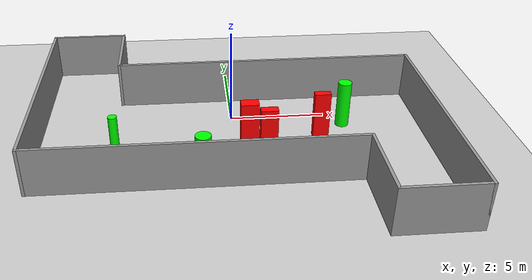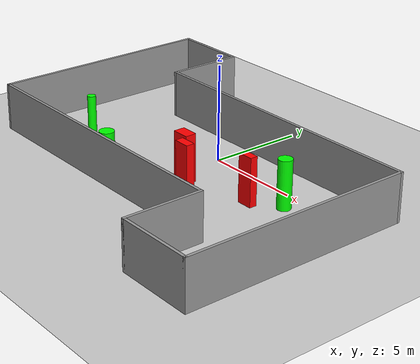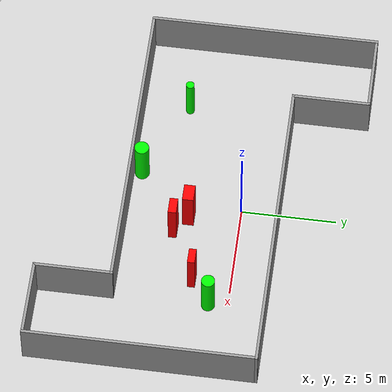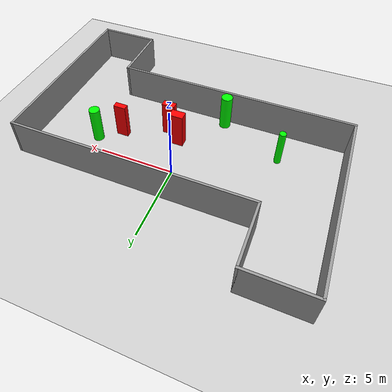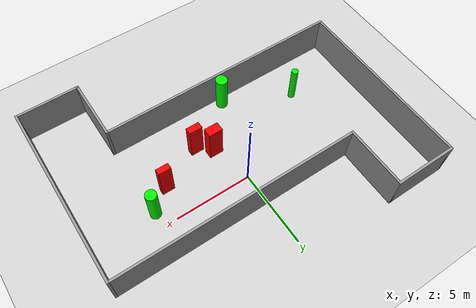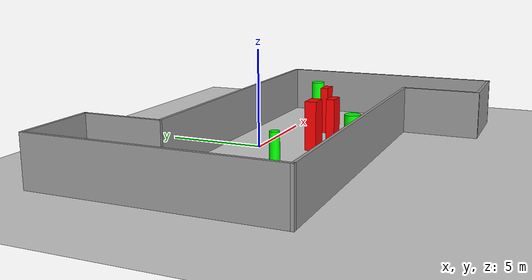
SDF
<sdf version="1.7">
 <world name="default">
  <light name="sun" type="directional">
   <pose>0 0 10 0 -0 0</pose>
   <diffuse>0.8 0.8 0.8 1</diffuse>
   <specular>0.2 0.2 0.2 1</specular>
   <attenuation>
    <range>1000</range>
    <constant>0.9</constant>
    <linear>0.01</linear>
    <quadratic>0.001</quadratic>
   </attenuation>
   <direction>-0.5 0.1 -0.9</direction>
   <spot><inner_angle>0</inner_angle><outer_angle>0</outer_angle><falloff>0</falloff></spot>
  </light>
  <model name="ground_plane">
   <static>1</static>
   <link name="link">
    <collision name="collision">
     <geometry><plane><normal>0 0 1</normal><size>100 100</size></plane></geometry>
     <surface>
      <contact><collide_bitmask>65535</collide_bitmask></contact>
      <friction><ode><mu>100</mu><mu2>50</mu2></ode></friction>
     </surface>
    </collision>
    <visual name="visual">
     <cast_shadows>0</cast_shadows>
     <geometry><plane><normal>0 0 1</normal><size>100 100</size></plane></geometry>
     <material>
      <script><uri>file://media/materials/scripts/gazebo.material</uri><name>Gazebo/Grey</name></script>
     </material>
    </visual>
   </link>
  </model>
  <gravity>0 0 -9.8</gravity>
  <magnetic_field>6e-06 2.3e-05 -4.2e-05</magnetic_field>
  <atmosphere type="adiabatic"/>
  <physics type="ode">
   <max_step_size>0.001</max_step_size>
   <real_time_factor>1</real_time_factor>
   <real_time_update_rate>1000</real_time_update_rate>
  </physics>
  <scene><ambient>0.4 0.4 0.4 1</ambient><background>0.7 0.7 0.7 1</background><shadows>1</shadows></scene>
  <spherical_coordinates>
   <surface_model>EARTH_WGS84</surface_model>
   <latitude_deg>0</latitude_deg>
   <longitude_deg>0</longitude_deg>
   <elevation>0</elevation>
   <heading_deg>0</heading_deg>
  </spherical_coordinates>
  <model name="my_base_walls">
   <link name="Wall_13">
    <collision name="Wall_13_Collision">
     <geometry><box><size>12.15 0.15 2.5</size></box></geometry>
     <pose>0 0 1.25 0 -0 0</pose>
    </collision>
    <visual name="Wall_13_Visual">
     <pose>0 0 1.25 0 -0 0</pose>
     <geometry><box><size>12.15 0.15 2.5</size></box></geometry>
     <material>
      <script><uri>file://media/materials/scripts/gazebo.material</uri><name>Gazebo/Grey</name></script>
      <ambient>1 1 1 1</ambient>
     </material>
     <meta><layer>0</layer></meta>
    </visual>
    <pose>10 -2 0 0 -0 1.5708</pose>
   </link>
   <link name="Wall_15">
    <collision name="Wall_15_Collision">
     <geometry><box><size>16.15 0.15 2.5</size></box></geometry>
     <pose>0 0 1.25 0 -0 0</pose>
    </collision>
    <visual name="Wall_15_Visual">
     <pose>0 0 1.25 0 -0 0</pose>
     <geometry><box><size>16.15 0.15 2.5</size></box></geometry>
     <material>
      <script><uri>file://media/materials/scripts/gazebo.material</uri><name>Gazebo/Grey</name></script>
      <ambient>1 1 1 1</ambient>
     </material>
     <meta><layer>0</layer></meta>
    </visual>
    <pose>2 4 0 0 -0 3.14159</pose>
   </link>
   <link name="Wall_17">
    <collision name="Wall_17_Collision">
     <geometry><box><size>4.15 0.15 2.5</size></box></geometry>
     <pose>0 0 1.25 0 -0 0</pose>
    </collision>
    <visual name="Wall_17_Visual">
     <pose>0 0 1.25 0 -0 0</pose>
     <geometry><box><size>4.15 0.15 2.5</size></box></geometry>
     <material>
      <script><uri>file://media/materials/scripts/gazebo.material</uri><name>Gazebo/Grey</name></script>
      <ambient>1 1 1 1</ambient>
     </material>
     <meta><layer>0</layer></meta>
    </visual>
    <pose>6 -6 0 0 -0 -1.5708</pose>
   </link>
   <link name="Wall_19">
    <collision name="Wall_19_Collision">
     <geometry><box><size>12.15 0.15 2.5</size></box></geometry>
     <pose>0 0 1.25 0 -0 0</pose>
    </collision>
    <visual name="Wall_19_Visual">
     <pose>0 0 1.25 0 -0 0</pose>
     <geometry><box><size>12.15 0.15 2.5</size></box></geometry>
     <material>
      <script><uri>file://media/materials/scripts/gazebo.material</uri><name>Gazebo/Grey</name></script>
      <ambient>1 1 1 1</ambient>
     </material>
     <meta><layer>0</layer></meta>
    </visual>
    <pose>-10 2 0 0 -0 1.5708</pose>
   </link>
   <link name="Wall_21">
    <collision name="Wall_21_Collision">
     <geometry><box><size>4.15 0.15 2.5</size></box></geometry>
     <pose>0 0 1.25 0 -0 0</pose>
    </collision>
    <visual name="Wall_21_Visual">
     <pose>0 0 1.25 0 -0 0</pose>
     <geometry><box><size>4.15 0.15 2.5</size></box></geometry>
     <material>
      <script><uri>file://media/materials/scripts/gazebo.material</uri><name>Gazebo/Grey</name></script>
      <ambient>1 1 1 1</ambient>
     </material>
     <meta><layer>0</layer></meta>
    </visual>
    <pose>-8 8 0 0 -0 0</pose>
   </link>
   <link name="Wall_23">
    <collision name="Wall_23_Collision">
     <geometry><box><size>4.15 0.15 2.5</size></box></geometry>
     <pose>0 0 1.25 0 -0 0</pose>
    </collision>
    <visual name="Wall_23_Visual">
     <pose>0 0 1.25 0 -0 0</pose>
     <geometry><box><size>4.15 0.15 2.5</size></box></geometry>
     <material>
      <script><uri>file://media/materials/scripts/gazebo.material</uri><name>Gazebo/Grey</name></script>
      <ambient>1 1 1 1</ambient>
     </material>
     <meta><layer>0</layer></meta>
    </visual>
    <pose>-6 6 0 0 -0 -1.5708</pose>
   </link>
   <link name="Wall_25">
    <collision name="Wall_25_Collision">
     <geometry><box><size>4.15 0.15 2.5</size></box></geometry>
     <pose>0 0 1.25 0 -0 0</pose>
    </collision>
    <visual name="Wall_25_Visual">
     <pose>0 0 1.25 0 -0 0</pose>
     <geometry><box><size>4.15 0.15 2.5</size></box></geometry>
     <material>
      <script><uri>file://media/materials/scripts/gazebo.material</uri><name>Gazebo/Grey</name></script>
      <ambient>1 1 1 1</ambient>
     </material>
     <meta><layer>0</layer></meta>
    </visual>
    <pose>8 -8 0 0 -0 0</pose>
   </link>
   <link name="Wall_9">
    <collision name="Wall_9_Collision">
     <geometry><box><size>16.15 0.15 2.5</size></box></geometry>
     <pose>0 0 1.25 0 -0 0</pose>
    </collision>
    <visual name="Wall_9_Visual">
     <pose>0 0 1.25 0 -0 0</pose>
     <geometry><box><size>16.15 0.15 2.5</size></box></geometry>
     <material>
      <script><uri>file://media/materials/scripts/gazebo.material</uri><name>Gazebo/Grey</name></script>
      <ambient>1 1 1 1</ambient>
     </material>
     <meta><layer>0</layer></meta>
    </visual>
    <pose>-2 -4 0 0 -0 3.14159</pose>
   </link>
   <static>1</static>
   <pose>-0 -2 0 0 -0 0</pose>
  </model>
  <model name="cylinder1">
   <static>1</static>
   <link name="link">
    <inertial>
     <mass>1</mass>
     <inertia><ixx>0.5</ixx><ixy>0</ixy><ixz>0</ixz><iyy>0.5</iyy><iyz>0</iyz><izz>1</izz></inertia>
    </inertial>
    <collision name="collision">
     <geometry><cylinder><radius>0.35154746976221063</radius><length>2.5</length></cylinder></geometry>
    </collision>
    <visual name="visual">
     <geometry><cylinder><radius>0.35154746976221063</radius><length>2.5</length></cylinder></geometry>
     <material>
      <ambient>0 1 0 1</ambient>
      <diffuse>0 1 0 1</diffuse>
      <specular>0.1 0.1 0.1 1</specular>
      <emissive>0 0 0 0</emissive>
     </material>
    </visual>
   </link>
   <pose>5.855699604252171 -1.0091331975154239 1.25 0 0 0</pose>
  </model>
  <model name="cylinder2">
   <static>1</static>
   <link name="link">
    <inertial>
     <mass>1</mass>
     <inertia><ixx>0.5</ixx><ixy>0</ixy><ixz>0</ixz><iyy>0.5</iyy><iyz>0</iyz><izz>1</izz></inertia>
    </inertial>
    <collision name="collision">
     <geometry><cylinder><radius>0.3804157472738034</radius><length>2.5</length></cylinder></geometry>
    </collision>
    <visual name="visual">
     <geometry><cylinder><radius>0.3804157472738034</radius><length>2.5</length></cylinder></geometry>
     <material>
      <ambient>0 1 0 1</ambient>
      <diffuse>0 1 0 1</diffuse>
      <specular>0.1 0.1 0.1 1</specular>
      <emissive>0 0 0 0</emissive>
     </material>
    </visual>
   </link>
   <pose>-1.7191646351723469 -5.506454412829583 1.25 0 0 0</pose>
  </model>
  <model name="cylinder3">
   <static>1</static>
   <link name="link">
    <inertial>
     <mass>1</mass>
     <inertia><ixx>0.5</ixx><ixy>0</ixy><ixz>0</ixz><iyy>0.5</iyy><iyz>0</iyz><izz>1</izz></inertia>
    </inertial>
    <collision name="collision">
     <geometry><cylinder><radius>0.22000779042814045</radius><length>2.5</length></cylinder></geometry>
    </collision>
    <visual name="visual">
     <geometry><cylinder><radius>0.22000779042814045</radius><length>2.5</length></cylinder></geometry>
     <material>
      <ambient>0 1 0 1</ambient>
      <diffuse>0 1 0 1</diffuse>
      <specular>0.1 0.1 0.1 1</specular>
      <emissive>0 0 0 0</emissive>
     </material>
    </visual>
   </link>
   <pose>-5.964598334602865 -3.509281555753498 1.25 0 0 0</pose>
  </model>
  <model name="box1">
   <static>1</static>
   <link name="link">
    <inertial>
     <mass>1</mass>
     <inertia><ixx>0.083</ixx><ixy>0</ixy><ixz>0</ixz><iyy>0.083</iyy><iyz>0</iyz><izz>0.083</izz></inertia>
    </inertial>
    <collision name="collision">
     <geometry><box><size>0.8206983646365122 0.3857317527532582 2.5</size></box></geometry>
    </collision>
    <visual name="visual">
     <geometry><box><size>0.8206983646365122 0.3857317527532582 2.5</size></box></geometry>
     <material>
      <ambient>1 0 0 1</ambient>
      <diffuse>1 0 0 1</diffuse>
      <specular>0.1 0.1 0.1 1</specular>
      <emissive>0 0 0 0</emissive>
     </material>
    </visual>
    <sensor name="my_contact" type="contact">
     <contact><collision>box_collision</collision><topic>__default_topic__</topic></contact>
    </sensor>
   </link>
   <pose>4.477882192375349 -2.0290975913439784 1.25 0 0 0</pose>
  </model>
  <model name="box2">
   <static>1</static>
   <link name="link">
    <inertial>
     <mass>1</mass>
     <inertia><ixx>0.083</ixx><ixy>0</ixy><ixz>0</ixz><iyy>0.083</iyy><iyz>0</iyz><izz>0.083</izz></inertia>
    </inertial>
    <collision name="collision">
     <geometry><box><size>0.8638273221645982 0.435992276854995 2.5</size></box></geometry>
    </collision>
    <visual name="visual">
     <geometry><box><size>0.8638273221645982 0.435992276854995 2.5</size></box></geometry>
     <material>
      <ambient>1 0 0 1</ambient>
      <diffuse>1 0 0 1</diffuse>
      <specular>0.1 0.1 0.1 1</specular>
      <emissive>0 0 0 0</emissive>
     </material>
    </visual>
    <sensor name="my_contact" type="contact">
     <contact><collision>box_collision</collision><topic>__default_topic__</topic></contact>
    </sensor>
   </link>
   <pose>1.593953377970136 -3.402803301840547 1.25 0 0 0</pose>
  </model>
  <model name="box3">
   <static>1</static>
   <link name="link">
    <inertial>
     <mass>1</mass>
     <inertia><ixx>0.083</ixx><ixy>0</ixy><ixz>0</ixz><iyy>0.083</iyy><iyz>0</iyz><izz>0.083</izz></inertia>
    </inertial>
    <collision name="collision">
     <geometry><box><size>0.9100368550022275 0.5907495751947823 2.5</size></box></geometry>
    </collision>
    <visual name="visual">
     <geometry><box><size>0.9100368550022275 0.5907495751947823 2.5</size></box></geometry>
     <material>
      <ambient>1 0 0 1</ambient>
      <diffuse>1 0 0 1</diffuse>
      <specular>0.1 0.1 0.1 1</specular>
      <emissive>0 0 0 0</emissive>
     </material>
    </visual>
    <sensor name="my_contact" type="contact">
     <contact><collision>box_collision</collision><topic>__default_topic__</topic></contact>
    </sensor>
   </link>
   <pose>0.7038608984095021 -2.6908598793824714 1.25 0 0 0</pose>
  </model>
 </world>
</sdf>
